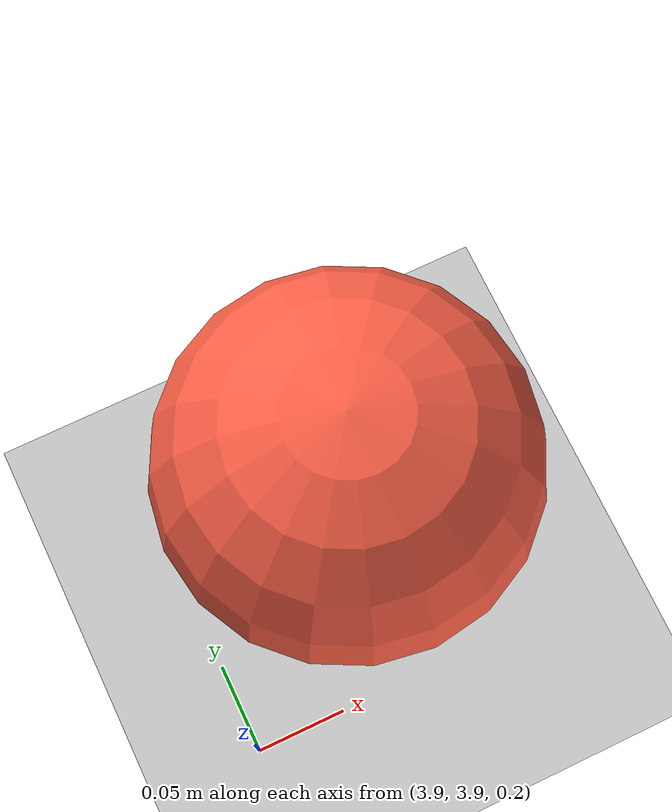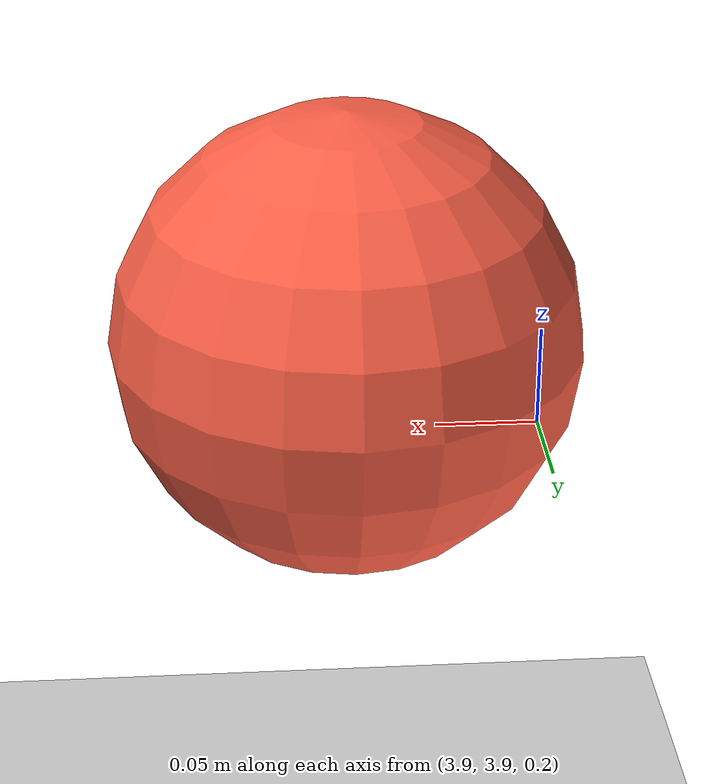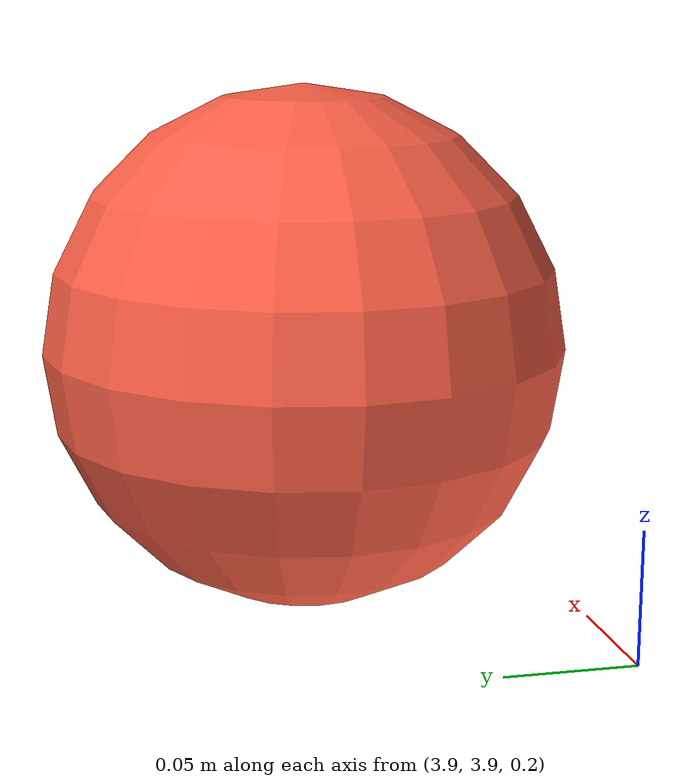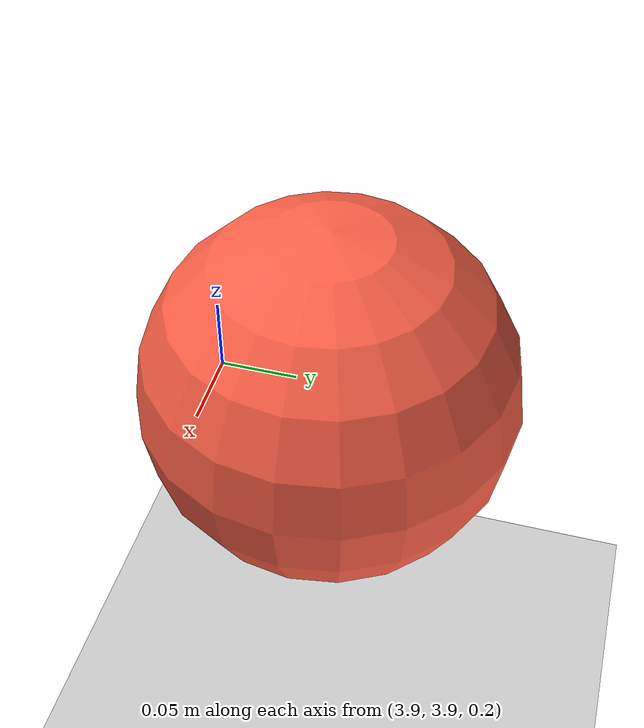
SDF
<?xml version="1.0" ?>
<sdf version='1.4'>
  <world name='default'>

    <physics type='ode'>
      <max_step_size>0.001</max_step_size>
      <real_time_factor>1</real_time_factor>
      <real_time_update_rate>1000</real_time_update_rate>
      <gravity>0 0 -9.8</gravity>
    </physics>

    <spherical_coordinates>
      <surface_model>EARTH_WGS84</surface_model>
      <latitude_deg>0</latitude_deg>
      <longitude_deg>0</longitude_deg>
      <elevation>0</elevation>
      <heading_deg>0</heading_deg>
    </spherical_coordinates>

    <!-- A global light source -->
   <scene>
      <sky>
        <clouds>
          <speed>12</speed>
        </clouds>
      </sky>
   </scene>

   <include>
     <uri>model://sun</uri>
   </include>

    <!-- A ground plane -->
    <include>
      <uri>model://ground_plane</uri>
    </include>

    <model name="small_sphere_1" >
      <pose>4 4 0.2 0 0 0</pose>
      <include>
        <uri>model://small_sphere</uri>
      </include>
      <plugin name="mbzirc_gazebo_treasure_plugin_sphere_1" filename="libmbzirc_gazebo_treasure_plugin.so">
        <guardName>hawk</guardName>
        <pirateName>hydrusx</pirateName>
        <markerTopicName>/long_box/marker</markerTopicName>
      </plugin>
    </model>

  </world>
</sdf>

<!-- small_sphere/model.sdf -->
<sdf version='1.4'>
  <model name="small_sphere">
    <link name="link" >
      <pose>0 0 0.1 0 0 0</pose>
      <inertial>
        <mass>0.1</mass>
        <inertia>
          <!-- http://answers.gazebosim.org/question/4372/the-inertia-matrix-explained/ -->
          <ixx>0.0004</ixx>    <!-- for a box: ixx = 0.4 * mass * r * r -->
          <ixy>0.0</ixy>         <!-- for a box: ixy = 0 -->
          <ixz>0.0</ixz>         <!-- for a box: ixz = 0 -->
          <iyy>0.0004</iyy>    <!-- for a box: iyy = 0.4 * mass * r * r -->
          <iyz>0.0</iyz>         <!-- for a box: iyz = 0 -->
          <izz>0.0004</izz>    <!-- for a box: izz = 0.4 * mass * r * r -->
        </inertia>
      </inertial>
      <collision name="collision">
        <geometry>
          <sphere>
            <radius>0.1</radius>
          </sphere>
        </geometry>
      </collision>
      <visual name="visual">
        <geometry>
          <sphere>
            <radius>0.1</radius>
          </sphere>
        </geometry>
        <material>
          <ambient>1.00 0.39 0.28 1</ambient> <!-- tomato -->
          <diffuse>1.00 0.38 0.28 1</diffuse>
          <specular>0.1 0.1 0.1 1</specular>
          <emissive>0 0 0 0</emissive>
        </material>
      </visual>
    </link>
  </model>
</sdf>
